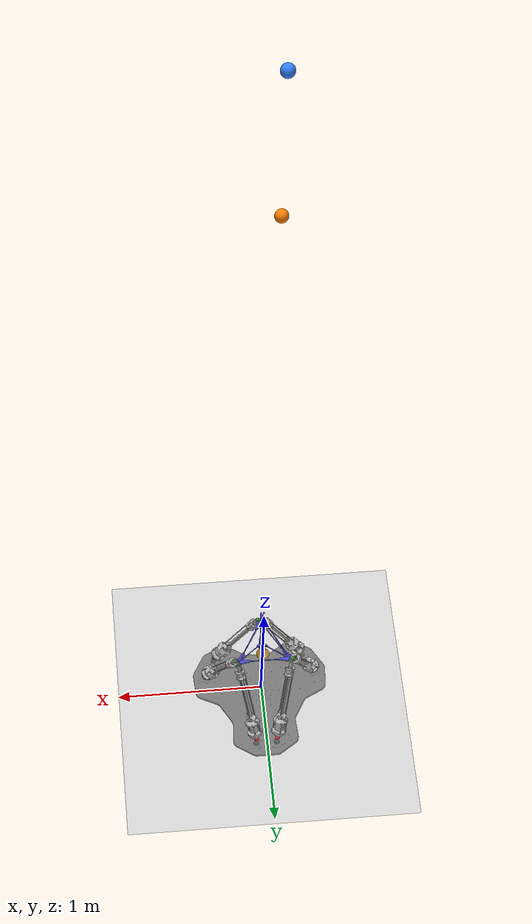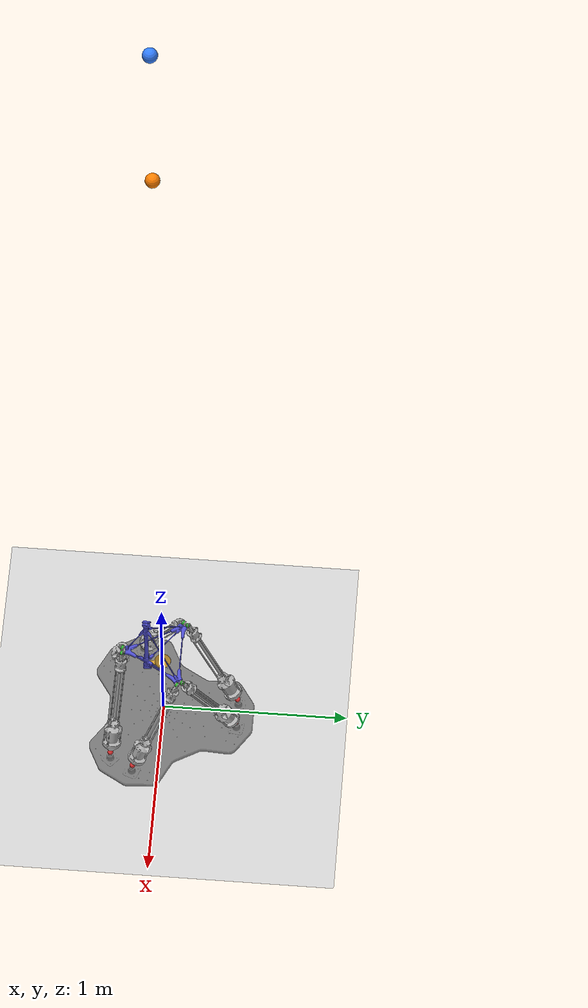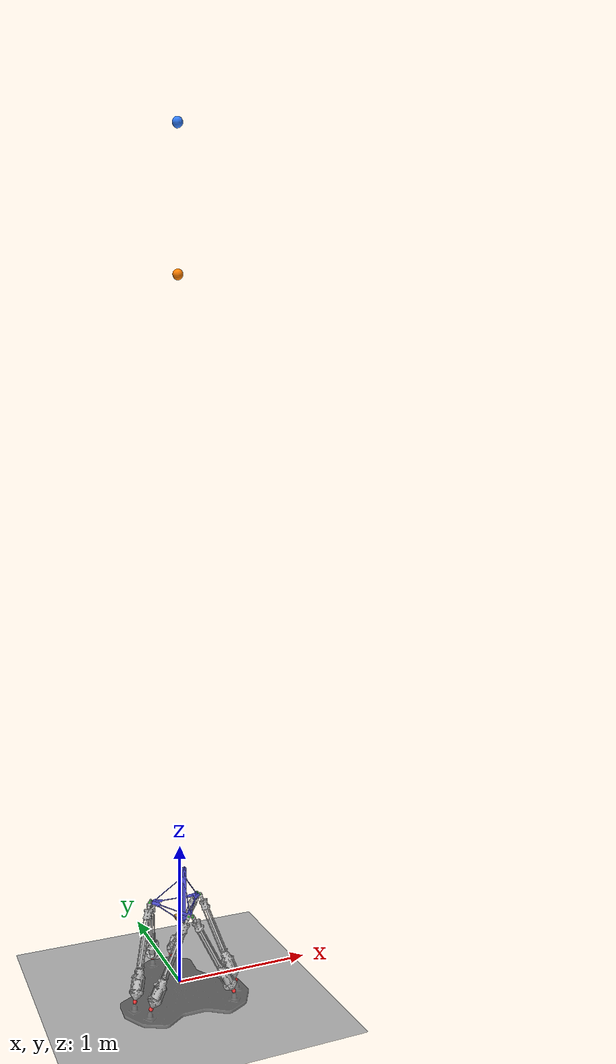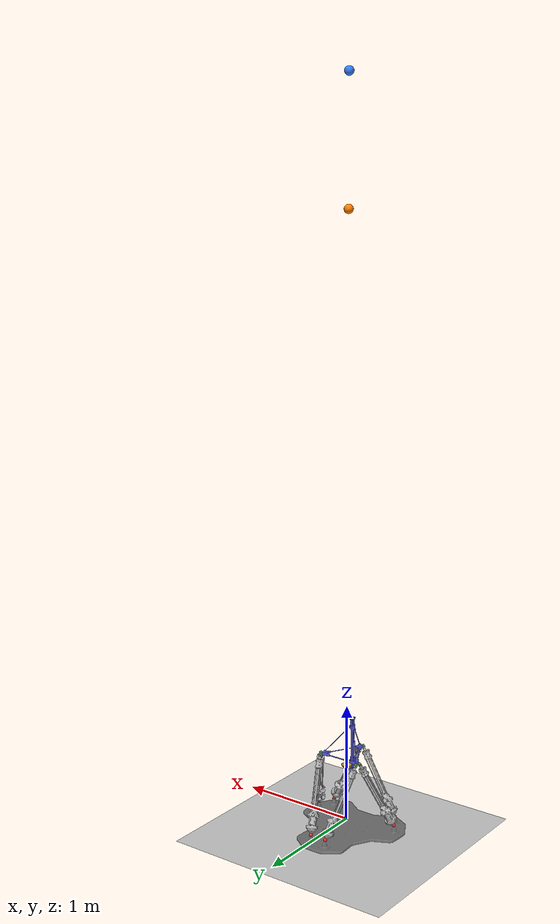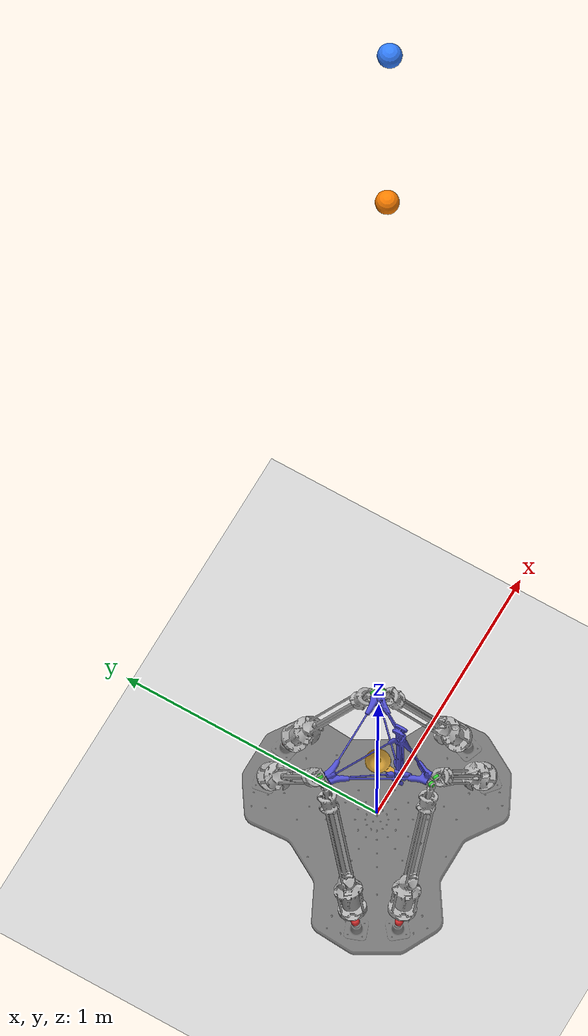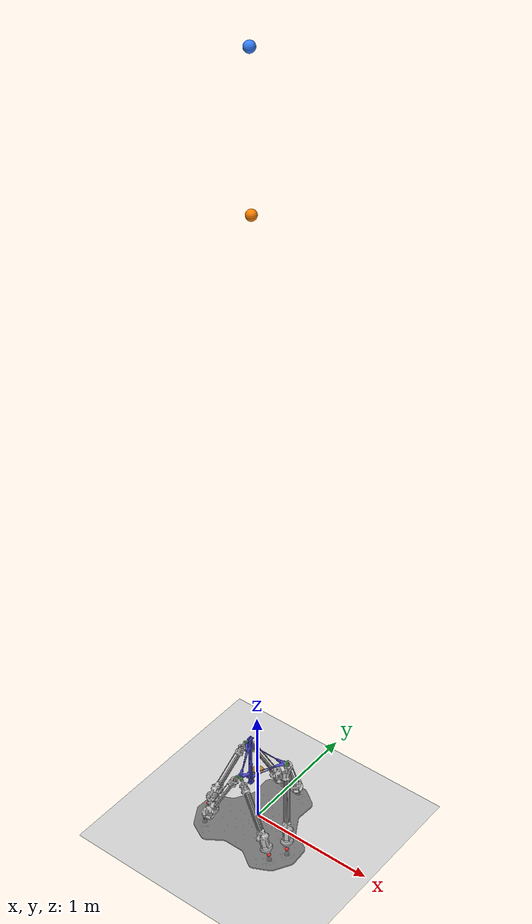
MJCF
<?xml version="1.0" encoding="utf-8"?>
<mujoco model="jugglebot">
  <compiler angle="radian" coordinate="local"/>
  <option timestep="0.001" gravity="0 0 -9.806" solver="Newton" iterations="100" tolerance="1e-10" impratio="1"/>
  <size nconmax="200" njmax="1000"/>
  <visual>
    <global azimuth="135" elevation="-30"/>
    <quality shadowsize="0" offsamples="0"/>
  </visual>
  <asset>
    <texture name="grid" type="2d" builtin="checker" width="512" height="512" rgb1="0.9 0.9 0.9" rgb2="0.7 0.7 0.7"/>
    <!-- reflectance=0: the floor is no longer mirror-like (the demo's
         juggling motion is the focus; floor reflections were extra GPU
         load with no informational value). -->
    <material name="grid_mat" texture="grid" texrepeat="8 8" reflectance="0"/>
    <material name="platform_mat" rgba="0.3 0.3 0.8 0.9"/>
    <material name="base_mat" rgba="0.4 0.4 0.4 0.8"/>
    <material name="leg_mat" rgba="0.7 0.7 0.7 1.0"/>
    <material name="joint_mat" rgba="0.9 0.2 0.2 1.0"/>
    <material name="hand_mat" rgba="0.8 0.6 0.2 0.9"/>
    <material name="ball_mat" rgba="1.0 0.5 0.0 1.0"/>
    <material name="ball2_mat" rgba="0.2 0.5 1.0 1.0"/>
    <mesh name="base_mesh" file="meshes/base.stl" scale="0.001 0.001 0.001"/>
    <mesh name="platform_mesh" file="meshes/platform.stl" scale="0.001 0.001 0.001"/>
    <mesh name="leg_outer_mesh" file="meshes/leg_outer.stl" scale="0.001 0.001 0.001"/>
    <mesh name="leg_inner_mesh" file="meshes/leg_inner.stl" scale="0.001 0.001 0.001"/>
    <mesh name="hand_mesh" file="meshes/hand.stl" scale="0.001 0.001 0.001"/>
    <mesh name="hand_part_0" file="meshes/Hand - Part 1.stl" scale="0.001 0.001 0.001"/>
    <mesh name="hand_part_1" file="meshes/Hand - Part 2.stl" scale="0.001 0.001 0.001"/>
    <mesh name="hand_part_2" file="meshes/Hand - Part 3.stl" scale="0.001 0.001 0.001"/>
    <mesh name="hand_part_3" file="meshes/Hand - Part 4.stl" scale="0.001 0.001 0.001"/>
    <mesh name="hand_part_4" file="meshes/Hand - Part 5.stl" scale="0.001 0.001 0.001"/>
    <mesh name="hand_part_5" file="meshes/Hand - Part 6.stl" scale="0.001 0.001 0.001"/>
    <mesh name="hand_part_6" file="meshes/Hand - Part 7.stl" scale="0.001 0.001 0.001"/>
    <mesh name="hand_part_7" file="meshes/Hand - Part 8.stl" scale="0.001 0.001 0.001"/>
  </asset>
  <default>
    <joint damping="50" armature="0.01"/>
    <default class="leg">
      <joint damping="200"/>
      <geom type="capsule" size="0.012" material="leg_mat" contype="0" conaffinity="0"/>
    </default>
  </default>
  <worldbody>
    <geom name="floor" type="plane" size="1.0 1.0 0.01" material="grid_mat" pos="0 0 -0.082"/>
    <light directional="true" diffuse="0.8 0.8 0.8" pos="0 0 2" dir="0 0 -1"/>
    <geom name="base_visual" type="mesh" mesh="base_mesh" pos="0 0 -0.082" material="base_mat" contype="0" conaffinity="0"/>
    <site name="base_site_0" pos="-0.383063 -0.134512 0.000000" size="0.015" rgba="0.9 0.2 0.2 1"/>
    <site name="base_site_1" pos="-0.308525 -0.264256 0.000000" size="0.015" rgba="0.9 0.2 0.2 1"/>
    <site name="base_site_2" pos="0.309575 -0.262841 0.000000" size="0.015" rgba="0.9 0.2 0.2 1"/>
    <site name="base_site_3" pos="0.380200 -0.136271 0.000000" size="0.015" rgba="0.9 0.2 0.2 1"/>
    <site name="base_site_4" pos="0.069989 0.400446 0.000000" size="0.015" rgba="0.9 0.2 0.2 1"/>
    <site name="base_site_5" pos="-0.073497 0.399797 0.000000" size="0.015" rgba="0.9 0.2 0.2 1"/>
    <body name="platform" pos="0 0 0.578200">
      <freejoint name="platform_joint"/>
      <inertial pos="-0.009680 -0.068640 0.052730" mass="1.2" fullinertia="0.016349800 0.014987903 0.009298383 -0.000402572 0.000191094 0.000979411"/>
      <geom name="platform_visual" type="mesh" mesh="platform_mesh" pos="0 0 0" material="platform_mat" contype="0" conaffinity="0"/>
      <site name="platform_origin" pos="0 0 0" size="0.005" rgba="1 1 1 0"/>
      <site name="plat_site_0" pos="-0.196214 0.096106 0.001841" size="0.012" rgba="0.2 0.8 0.2 1"/>
      <site name="plat_site_1" pos="-0.014360 -0.217224 0.002607" size="0.012" rgba="0.2 0.8 0.2 1"/>
      <site name="plat_site_2" pos="0.017125 -0.216223 -0.002856" size="0.012" rgba="0.2 0.8 0.2 1"/>
      <site name="plat_site_3" pos="0.194333 0.092922 0.001148" size="0.012" rgba="0.2 0.8 0.2 1"/>
      <site name="plat_site_4" pos="0.178785 0.121436 -0.000744" size="0.012" rgba="0.2 0.8 0.2 1"/>
      <site name="plat_site_5" pos="-0.179669 0.122983 -0.001997" size="0.012" rgba="0.2 0.8 0.2 1"/>
      <body name="hand" pos="0 0 -0.129000">
        <inertial pos="0 0 0.055" mass="0.281" diaginertia="0.000200 0.000200 0.000050"/>
        <joint name="hand_slide" type="slide" axis="0 0 1" limited="true" range="0 0.344750" damping="50" armature="0.001"/>
        <geom name="hand_visual" type="mesh" mesh="hand_mesh" pos="0 -0.065 0" quat="0 0 0.707107 0.707107" material="hand_mat" contype="0" conaffinity="0" mass="0"/>
        <geom name="hand_collision_0" type="mesh" mesh="hand_part_0" pos="0 0 0.010" quat="0.707107 0.707107 0 0" rgba="0 0 0 0" mass="0" contype="2" conaffinity="2" solref="0.05 2.0" solimp="0.99 0.99 0.001" friction="1.0 0.005 0.0001"/>
        <geom name="hand_collision_1" type="mesh" mesh="hand_part_1" pos="0 0 0.010" quat="0.707107 0.707107 0 0" rgba="0 0 0 0" mass="0" contype="2" conaffinity="2" solref="0.05 2.0" solimp="0.99 0.99 0.001" friction="1.0 0.005 0.0001"/>
        <geom name="hand_collision_2" type="mesh" mesh="hand_part_2" pos="0 0 0.010" quat="0.707107 0.707107 0 0" rgba="0 0 0 0" mass="0" contype="2" conaffinity="2" solref="0.05 2.0" solimp="0.99 0.99 0.001" friction="1.0 0.005 0.0001"/>
        <geom name="hand_collision_3" type="mesh" mesh="hand_part_3" pos="0 0 0.010" quat="0.707107 0.707107 0 0" rgba="0 0 0 0" mass="0" contype="2" conaffinity="2" solref="0.05 2.0" solimp="0.99 0.99 0.001" friction="1.0 0.005 0.0001"/>
        <geom name="hand_collision_4" type="mesh" mesh="hand_part_4" pos="0 0 0.010" quat="0.707107 0.707107 0 0" rgba="0 0 0 0" mass="0" contype="2" conaffinity="2" solref="0.05 2.0" solimp="0.99 0.99 0.001" friction="1.0 0.005 0.0001"/>
        <geom name="hand_collision_5" type="mesh" mesh="hand_part_5" pos="0 0 0.010" quat="0.707107 0.707107 0 0" rgba="0 0 0 0" mass="0" contype="2" conaffinity="2" solref="0.05 2.0" solimp="0.99 0.99 0.001" friction="1.0 0.005 0.0001"/>
        <geom name="hand_collision_6" type="mesh" mesh="hand_part_6" pos="0 0 0.010" quat="0.707107 0.707107 0 0" rgba="0 0 0 0" mass="0" contype="2" conaffinity="2" solref="0.05 2.0" solimp="0.99 0.99 0.001" friction="1.0 0.005 0.0001"/>
        <geom name="hand_collision_7" type="mesh" mesh="hand_part_7" pos="0 0 0.010" quat="0.707107 0.707107 0 0" rgba="0 0 0 0" mass="0" contype="2" conaffinity="2" solref="0.05 2.0" solimp="0.99 0.99 0.001" friction="1.0 0.005 0.0001"/>
        <site name="hand_opening" pos="0 0 0.0444" size="0.010" rgba="1.0 0.8 0.0 1"/>
      </body>
    </body>
    <body name="leg_0_base" pos="-0.383063 -0.134512 0.000000" quat="0.972168 -0.182037 0.147488 0.000000">
      <inertial pos="0 0 0.228050" mass="1.39" diaginertia="0.049315 0.049315 0.000278"/>
      <joint name="leg_0_hinge_x" type="hinge" axis="1 0 0" limited="false" class="leg"/>
      <joint name="leg_0_hinge_y" type="hinge" axis="0 1 0" limited="false" class="leg"/>
      <geom name="leg_0_outer_visual" type="mesh" mesh="leg_outer_mesh" pos="0 0 -0.064" material="leg_mat" contype="0" conaffinity="0"/>
      <body name="leg_0" pos="0 0 0.651571">
        <inertial pos="0 0 0" mass="0.1" diaginertia="0.000756 0.000756 0.000011"/>
        <joint name="leg_0_slide" type="slide" axis="0 0 1" limited="true" range="-0.005000 0.285000" class="leg"/>
        <geom name="leg_0_inner_visual" type="mesh" mesh="leg_inner_mesh" pos="0 0 -0.70447" material="leg_mat" contype="0" conaffinity="0"/>
        <site name="leg_0_tip" pos="0 0 0" size="0.010" rgba="0.9 0.9 0.2 1"/>
      </body>
    </body>
    <body name="leg_1_base" pos="-0.308525 -0.264256 0.000000" quat="0.972056 -0.037061 0.231805 0.000000">
      <inertial pos="0 0 0.228462" mass="1.39" diaginertia="0.049494 0.049494 0.000278"/>
      <joint name="leg_1_hinge_x" type="hinge" axis="1 0 0" limited="false" class="leg"/>
      <joint name="leg_1_hinge_y" type="hinge" axis="0 1 0" limited="false" class="leg"/>
      <geom name="leg_1_outer_visual" type="mesh" mesh="leg_outer_mesh" pos="0 0 -0.064" material="leg_mat" contype="0" conaffinity="0"/>
      <body name="leg_1" pos="0 0 0.652750">
        <inertial pos="0 0 0" mass="0.1" diaginertia="0.000756 0.000756 0.000011"/>
        <joint name="leg_1_slide" type="slide" axis="0 0 1" limited="true" range="-0.005000 0.285000" class="leg"/>
        <geom name="leg_1_inner_visual" type="mesh" mesh="leg_inner_mesh" pos="0 0 -0.70447" material="leg_mat" contype="0" conaffinity="0"/>
        <site name="leg_1_tip" pos="0 0 0" size="0.010" rgba="0.9 0.9 0.2 1"/>
      </body>
    </body>
    <body name="leg_2_base" pos="0.309575 -0.262841 0.000000" quat="0.971887 -0.037063 -0.232511 0.000000">
      <inertial pos="0 0 0.226480" mass="1.39" diaginertia="0.048641 0.048641 0.000278"/>
      <joint name="leg_2_hinge_x" type="hinge" axis="1 0 0" limited="false" class="leg"/>
      <joint name="leg_2_hinge_y" type="hinge" axis="0 1 0" limited="false" class="leg"/>
      <geom name="leg_2_outer_visual" type="mesh" mesh="leg_outer_mesh" pos="0 0 -0.064" material="leg_mat" contype="0" conaffinity="0"/>
      <body name="leg_2" pos="0 0 0.647087">
        <inertial pos="0 0 0" mass="0.1" diaginertia="0.000756 0.000756 0.000011"/>
        <joint name="leg_2_slide" type="slide" axis="0 0 1" limited="true" range="-0.005000 0.285000" class="leg"/>
        <geom name="leg_2_inner_visual" type="mesh" mesh="leg_inner_mesh" pos="0 0 -0.70447" material="leg_mat" contype="0" conaffinity="0"/>
        <site name="leg_2_tip" pos="0 0 0" size="0.010" rgba="0.9 0.9 0.2 1"/>
      </body>
    </body>
    <body name="leg_3_base" pos="0.380200 -0.136271 0.000000" quat="0.972387 -0.181262 -0.146996 0.000000">
      <inertial pos="0 0 0.227559" mass="1.39" diaginertia="0.049104 0.049104 0.000278"/>
      <joint name="leg_3_hinge_x" type="hinge" axis="1 0 0" limited="false" class="leg"/>
      <joint name="leg_3_hinge_y" type="hinge" axis="0 1 0" limited="false" class="leg"/>
      <geom name="leg_3_outer_visual" type="mesh" mesh="leg_outer_mesh" pos="0 0 -0.064" material="leg_mat" contype="0" conaffinity="0"/>
      <body name="leg_3" pos="0 0 0.650169">
        <inertial pos="0 0 0" mass="0.1" diaginertia="0.000756 0.000756 0.000011"/>
        <joint name="leg_3_slide" type="slide" axis="0 0 1" limited="true" range="-0.005000 0.285000" class="leg"/>
        <geom name="leg_3_inner_visual" type="mesh" mesh="leg_inner_mesh" pos="0 0 -0.70447" material="leg_mat" contype="0" conaffinity="0"/>
        <site name="leg_3_tip" pos="0 0 0" size="0.010" rgba="0.9 0.9 0.2 1"/>
      </body>
    </body>
    <body name="leg_4_base" pos="0.069989 0.400446 0.000000" quat="0.971525 0.220746 0.086077 -0.000000">
      <inertial pos="0 0 0.227672" mass="1.39" diaginertia="0.049153 0.049153 0.000278"/>
      <joint name="leg_4_hinge_x" type="hinge" axis="1 0 0" limited="false" class="leg"/>
      <joint name="leg_4_hinge_y" type="hinge" axis="0 1 0" limited="false" class="leg"/>
      <geom name="leg_4_outer_visual" type="mesh" mesh="leg_outer_mesh" pos="0 0 -0.064" material="leg_mat" contype="0" conaffinity="0"/>
      <body name="leg_4" pos="0 0 0.650491">
        <inertial pos="0 0 0" mass="0.1" diaginertia="0.000756 0.000756 0.000011"/>
        <joint name="leg_4_slide" type="slide" axis="0 0 1" limited="true" range="-0.005000 0.285000" class="leg"/>
        <geom name="leg_4_inner_visual" type="mesh" mesh="leg_inner_mesh" pos="0 0 -0.70447" material="leg_mat" contype="0" conaffinity="0"/>
        <site name="leg_4_tip" pos="0 0 0" size="0.010" rgba="0.9 0.9 0.2 1"/>
      </body>
    </body>
    <body name="leg_5_base" pos="-0.073497 0.399797 0.000000" quat="0.971905 0.219764 -0.084291 0.000000">
      <inertial pos="0 0 0.226801" mass="1.39" diaginertia="0.048778 0.048778 0.000278"/>
      <joint name="leg_5_hinge_x" type="hinge" axis="1 0 0" limited="false" class="leg"/>
      <joint name="leg_5_hinge_y" type="hinge" axis="0 1 0" limited="false" class="leg"/>
      <geom name="leg_5_outer_visual" type="mesh" mesh="leg_outer_mesh" pos="0 0 -0.064" material="leg_mat" contype="0" conaffinity="0"/>
      <body name="leg_5" pos="0 0 0.648004">
        <inertial pos="0 0 0" mass="0.1" diaginertia="0.000756 0.000756 0.000011"/>
        <joint name="leg_5_slide" type="slide" axis="0 0 1" limited="true" range="-0.005000 0.285000" class="leg"/>
        <geom name="leg_5_inner_visual" type="mesh" mesh="leg_inner_mesh" pos="0 0 -0.70447" material="leg_mat" contype="0" conaffinity="0"/>
        <site name="leg_5_tip" pos="0 0 0" size="0.010" rgba="0.9 0.9 0.2 1"/>
      </body>
    </body>
    <body name="ball" pos="0 0 5">
      <freejoint name="ball_joint"/>
      <geom name="ball_geom" type="sphere" size="0.037" mass="0.071" material="ball_mat" contype="3" conaffinity="3" solref="0.05 2.0" solimp="0.99 0.99 0.001" friction="1.0 0.005 0.0001"/>
      <site name="ball_site" pos="0 0 0" size="0.005" rgba="1 1 1 0"/>
    </body>
    <body name="ball2" pos="0 0 6">
      <freejoint name="ball2_joint"/>
      <geom name="ball2_geom" type="sphere" size="0.037" mass="0.071" material="ball2_mat" contype="3" conaffinity="3" solref="0.05 2.0" solimp="0.99 0.99 0.001" friction="1.0 0.005 0.0001"/>
      <site name="ball2_site" pos="0 0 0" size="0.005" rgba="1 1 1 0"/>
    </body>
  </worldbody>
  <contact>
    <exclude body1="ball" body2="ball2"/>
  </contact>
  <equality>
    <connect body1="platform" body2="leg_0" anchor="-0.196214 0.096106 0.001841" solref="0.005 1" solimp="0.99 0.99 0.001"/>
    <connect body1="platform" body2="leg_1" anchor="-0.014360 -0.217224 0.002607" solref="0.005 1" solimp="0.99 0.99 0.001"/>
    <connect body1="platform" body2="leg_2" anchor="0.017125 -0.216223 -0.002856" solref="0.005 1" solimp="0.99 0.99 0.001"/>
    <connect body1="platform" body2="leg_3" anchor="0.194333 0.092922 0.001148" solref="0.005 1" solimp="0.99 0.99 0.001"/>
    <connect body1="platform" body2="leg_4" anchor="0.178785 0.121436 -0.000744" solref="0.005 1" solimp="0.99 0.99 0.001"/>
    <connect body1="platform" body2="leg_5" anchor="-0.179669 0.122983 -0.001997" solref="0.005 1" solimp="0.99 0.99 0.001"/>
  </equality>
  <actuator>
    <position name="act_0" joint="leg_0_slide" kp="200000" kv="600" ctrlrange="-0.005000 0.285000" ctrllimited="true"/>
    <position name="act_1" joint="leg_1_slide" kp="200000" kv="600" ctrlrange="-0.005000 0.285000" ctrllimited="true"/>
    <position name="act_2" joint="leg_2_slide" kp="200000" kv="600" ctrlrange="-0.005000 0.285000" ctrllimited="true"/>
    <position name="act_3" joint="leg_3_slide" kp="200000" kv="600" ctrlrange="-0.005000 0.285000" ctrllimited="true"/>
    <position name="act_4" joint="leg_4_slide" kp="200000" kv="600" ctrlrange="-0.005000 0.285000" ctrllimited="true"/>
    <position name="act_5" joint="leg_5_slide" kp="200000" kv="600" ctrlrange="-0.005000 0.285000" ctrllimited="true"/>
    <position name="act_hand" joint="hand_slide" kp="100000" kv="350" ctrlrange="0 0.344750" ctrllimited="true"/>
  </actuator>
  <keyframe>
    <key name="home" qpos="0.000000 0.000000 0.578200 1.000000 0.000000 0.000000 0.000000 0.000000 0.000000 0.000000 0.000000 0.000000 0.000000 0.000000 0.000000 0.000000 0.000000 0.000000 0.000000 0.000000 0.000000 0.000000 0.000000 0.000000 0.000000 0.000000 0.000000 0.000000 5.000000 1.000000 0.000000 0.000000 0.000000 0.000000 0.000000 6.000000 1.000000 0.000000 0.000000 0.000000"/>
  </keyframe>
  <sensor>
    <jointpos name="slide_pos_0" joint="leg_0_slide"/>
    <jointvel name="slide_vel_0" joint="leg_0_slide"/>
    <jointpos name="slide_pos_1" joint="leg_1_slide"/>
    <jointvel name="slide_vel_1" joint="leg_1_slide"/>
    <jointpos name="slide_pos_2" joint="leg_2_slide"/>
    <jointvel name="slide_vel_2" joint="leg_2_slide"/>
    <jointpos name="slide_pos_3" joint="leg_3_slide"/>
    <jointvel name="slide_vel_3" joint="leg_3_slide"/>
    <jointpos name="slide_pos_4" joint="leg_4_slide"/>
    <jointvel name="slide_vel_4" joint="leg_4_slide"/>
    <jointpos name="slide_pos_5" joint="leg_5_slide"/>
    <jointvel name="slide_vel_5" joint="leg_5_slide"/>
    <framepos name="platform_pos" objtype="site" objname="platform_origin"/>
    <framequat name="platform_quat" objtype="site" objname="platform_origin"/>
    <framelinvel name="platform_linvel" objtype="site" objname="platform_origin"/>
    <frameangvel name="platform_angvel" objtype="site" objname="platform_origin"/>
    <jointpos name="hand_slide_pos" joint="hand_slide"/>
    <jointvel name="hand_slide_vel" joint="hand_slide"/>
    <framepos name="ball_pos" objtype="site" objname="ball_site"/>
    <framelinvel name="ball_vel" objtype="site" objname="ball_site"/>
    <framepos name="ball2_pos" objtype="site" objname="ball2_site"/>
    <framelinvel name="ball2_vel" objtype="site" objname="ball2_site"/>
  </sensor>
</mujoco>
